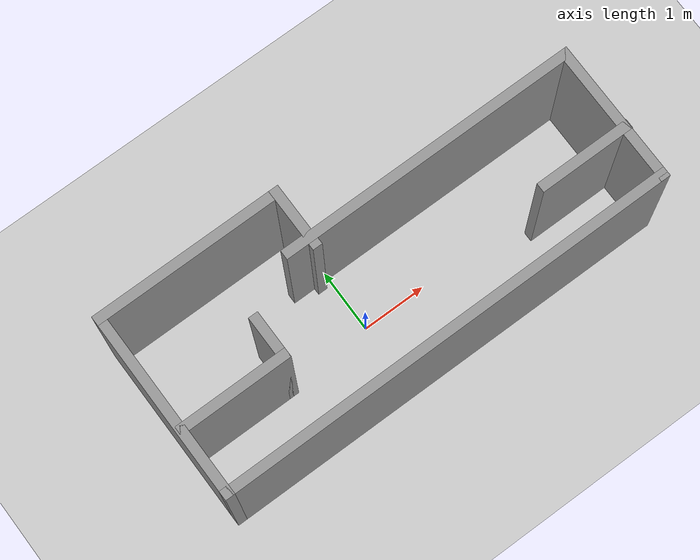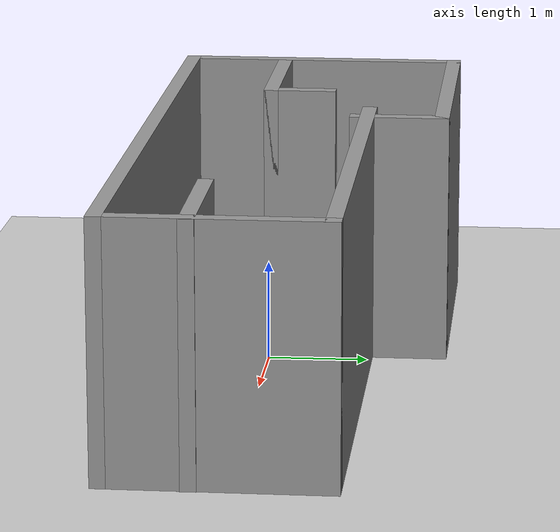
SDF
<sdf version="1.6">
 <world name="default">
  <light name="sun" type="directional">
   <pose>0 0 10 0 -0 0</pose>
   <diffuse>0.8 0.8 0.8 1</diffuse>
   <specular>0.2 0.2 0.2 1</specular>
   <attenuation>
    <range>1000</range>
    <constant>0.9</constant>
    <linear>0.01</linear>
    <quadratic>0.001</quadratic>
   </attenuation>
   <direction>-0.5 0.1 -0.9</direction>
  </light>
  <model name="ground_plane">
   <static>1</static>
   <link name="link">
    <collision name="collision">
     <geometry><plane><normal>0 0 1</normal><size>100 100</size></plane></geometry>
     <surface>
      <contact><collide_bitmask>65535</collide_bitmask></contact>
      <friction><ode><mu>100</mu><mu2>50</mu2></ode></friction>
     </surface>
    </collision>
    <visual name="visual">
     <cast_shadows>0</cast_shadows>
     <geometry><plane><normal>0 0 1</normal><size>100 100</size></plane></geometry>
     <material>
      <script><uri>file://media/materials/scripts/gazebo.material</uri><name>Gazebo/Grey</name></script>
     </material>
    </visual>
   </link>
  </model>
  <gravity>0 0 -9.8</gravity>
  <magnetic_field>6e-06 2.3e-05 -4.2e-05</magnetic_field>
  <atmosphere type="adiabatic"/>
  <physics name="default_physics" default="0" type="ode">
   <max_step_size>0.001</max_step_size>
   <real_time_factor>1</real_time_factor>
   <real_time_update_rate>1000</real_time_update_rate>
  </physics>
  <scene><ambient>0.4 0.4 0.4 1</ambient><background>0.7 0.7 0.7 1</background><shadows>1</shadows></scene>
  <audio><device>default</device></audio>
  <spherical_coordinates>
   <surface_model>EARTH_WGS84</surface_model>
   <latitude_deg>0</latitude_deg>
   <longitude_deg>0</longitude_deg>
   <elevation>0</elevation>
   <heading_deg>0</heading_deg>
  </spherical_coordinates>
  <model name="newbot">
   <pose>0.535572 0.302167 0 0 -0 0</pose>
   <link name="Wall_0">
    <collision name="Wall_0_Collision">
     <geometry><box><size>4.75 0.15 2.5</size></box></geometry>
     <pose>0 0 1.25 0 -0 0</pose>
    </collision>
    <visual name="Wall_0_Visual">
     <pose>0 0 1.25 0 -0 0</pose>
     <geometry><box><size>4.75 0.15 2.5</size></box></geometry>
     <material>
      <script><uri>file://media/materials/scripts/gazebo.material</uri><name>Gazebo/Grey</name></script>
      <ambient>1 1 1 1</ambient>
     </material>
     <meta><layer>0</layer></meta>
    </visual>
    <pose>1.24477 0.675 0 0 -0 0</pose>
   </link>
   <link name="Wall_1">
    <collision name="Wall_1_Collision">
     <geometry><box><size>2.25 0.15 2.5</size></box></geometry>
     <pose>0 0 1.25 0 -0 0</pose>
    </collision>
    <visual name="Wall_1_Visual">
     <pose>0 0 1.25 0 -0 0</pose>
     <geometry><box><size>2.25 0.15 2.5</size></box></geometry>
     <material>
      <script><uri>file://media/materials/scripts/gazebo.material</uri><name>Gazebo/Grey</name></script>
      <ambient>1 1 1 1</ambient>
     </material>
     <meta><layer>0</layer></meta>
    </visual>
    <pose>3.54477 -0.375 0 0 -0 -1.5708</pose>
   </link>
   <link name="Wall_10">
    <collision name="Wall_10_Collision">
     <geometry><box><size>1.5 0.15 2.5</size></box></geometry>
     <pose>0 0 1.25 0 -0 0</pose>
    </collision>
    <visual name="Wall_10_Visual">
     <pose>0 0 1.25 0 -0 0</pose>
     <geometry><box><size>1.5 0.15 2.5</size></box></geometry>
     <material>
      <script><uri>file://media/materials/scripts/gazebo.material</uri><name>Gazebo/Grey</name></script>
      <ambient>1 1 1 1</ambient>
     </material>
     <meta><layer>0</layer></meta>
    </visual>
    <pose>2.88023 -0.609556 0 0 -0 3.14159</pose>
   </link>
   <link name="Wall_2">
    <collision name="Wall_2_Collision">
     <geometry><box><size>7.25 0.15 2.5</size></box></geometry>
     <pose>0 0 1.25 0 -0 0</pose>
    </collision>
    <visual name="Wall_2_Visual">
     <pose>0 0 1.25 0 -0 0</pose>
     <geometry><box><size>7.25 0.15 2.5</size></box></geometry>
     <material>
      <script><uri>file://media/materials/scripts/gazebo.material</uri><name>Gazebo/Grey</name></script>
      <ambient>1 1 1 1</ambient>
     </material>
     <meta><layer>0</layer></meta>
    </visual>
    <pose>-0.005228 -1.425 0 0 -0 3.14159</pose>
   </link>
   <link name="Wall_3">
    <collision name="Wall_3_Collision">
     <geometry><box><size>3 0.15 2.5</size></box></geometry>
     <pose>0 0 1.25 0 -0 0</pose>
    </collision>
    <visual name="Wall_3_Visual">
     <pose>0 0 1.25 0 -0 0</pose>
     <geometry><box><size>3 0.15 2.5</size></box></geometry>
     <material>
      <script><uri>file://media/materials/scripts/gazebo.material</uri><name>Gazebo/Grey</name></script>
      <ambient>1 1 1 1</ambient>
     </material>
     <meta><layer>0</layer></meta>
    </visual>
    <pose>-3.55523 0 0 0 -0 1.5708</pose>
   </link>
   <link name="Wall_4">
    <collision name="Wall_4_Collision">
     <geometry><box><size>3 0.15 2.5</size></box></geometry>
     <pose>0 0 1.25 0 -0 0</pose>
    </collision>
    <visual name="Wall_4_Visual">
     <pose>0 0 1.25 0 -0 0</pose>
     <geometry><box><size>3 0.15 2.5</size></box></geometry>
     <material>
      <script><uri>file://media/materials/scripts/gazebo.material</uri><name>Gazebo/Grey</name></script>
      <ambient>1 1 1 1</ambient>
     </material>
     <meta><layer>0</layer></meta>
    </visual>
    <pose>-2.13023 1.425 0 0 -0 0</pose>
   </link>
   <link name="Wall_5">
    <collision name="Wall_5_Collision">
     <geometry><box><size>1 0.15 2.5</size></box></geometry>
     <pose>0 0 1.25 0 -0 0</pose>
    </collision>
    <visual name="Wall_5_Visual">
     <pose>0 0 1.25 0 -0 0</pose>
     <geometry><box><size>1 0.15 2.5</size></box></geometry>
     <material>
      <script><uri>file://media/materials/scripts/gazebo.material</uri><name>Gazebo/Grey</name></script>
      <ambient>1 1 1 1</ambient>
     </material>
     <meta><layer>0</layer></meta>
    </visual>
    <pose>-0.705228 1 0 0 -0 -1.5708</pose>
   </link>
   <link name="Wall_7">
    <collision name="Wall_7_Collision">
     <geometry><box><size>1.75 0.15 2.5</size></box></geometry>
     <pose>0 0 1.25 0 -0 0</pose>
    </collision>
    <visual name="Wall_7_Visual">
     <pose>0 0 1.25 0 -0 0</pose>
     <geometry><box><size>1.75 0.15 2.5</size></box></geometry>
     <material>
      <script><uri>file://media/materials/scripts/gazebo.material</uri><name>Gazebo/Grey</name></script>
      <ambient>1 1 1 1</ambient>
     </material>
     <meta><layer>0</layer></meta>
    </visual>
    <pose>-2.7245 -0.407278 0 0 -0 0</pose>
   </link>
   <link name="Wall_8">
    <collision name="Wall_8_Collision">
     <geometry><box><size>0.75 0.15 2.5</size></box></geometry>
     <pose>0 0 1.25 0 -0 0</pose>
    </collision>
    <visual name="Wall_8_Visual">
     <pose>0 0 1.25 0 -0 0</pose>
     <geometry><box><size>0.75 0.15 2.5</size></box></geometry>
     <material>
      <script><uri>file://media/materials/scripts/gazebo.material</uri><name>Gazebo/Grey</name></script>
      <ambient>1 1 1 1</ambient>
     </material>
     <meta><layer>0</layer></meta>
    </visual>
    <pose>-1.9245 -0.107278 0 0 -0 1.5708</pose>
   </link>
   <static>1</static>
  </model>
 </world>
</sdf>
